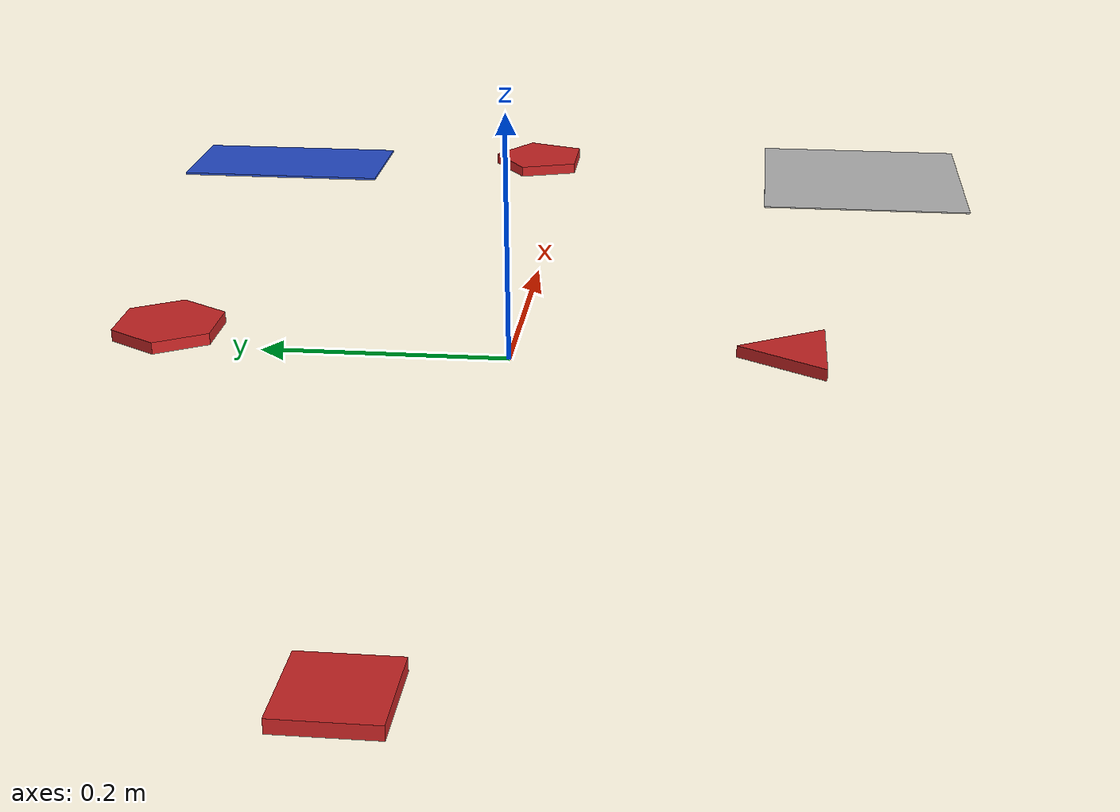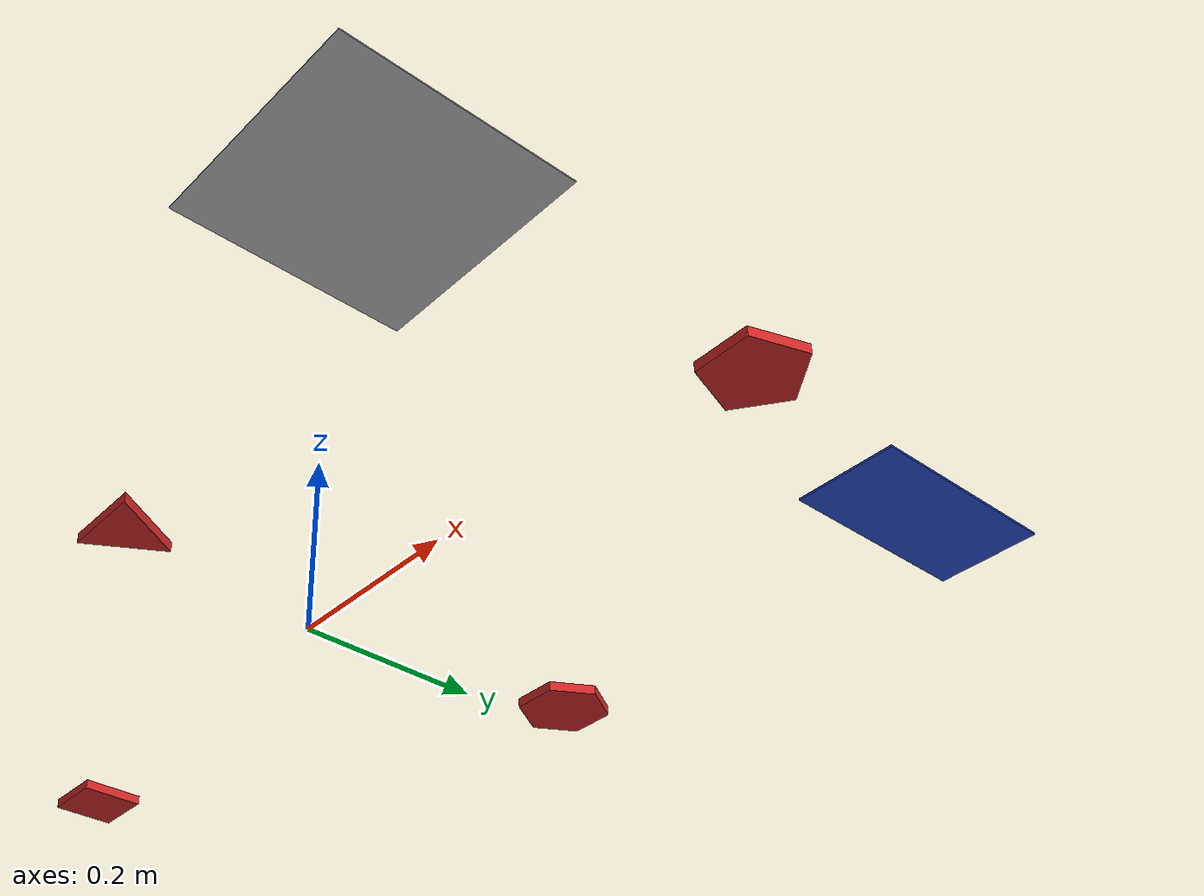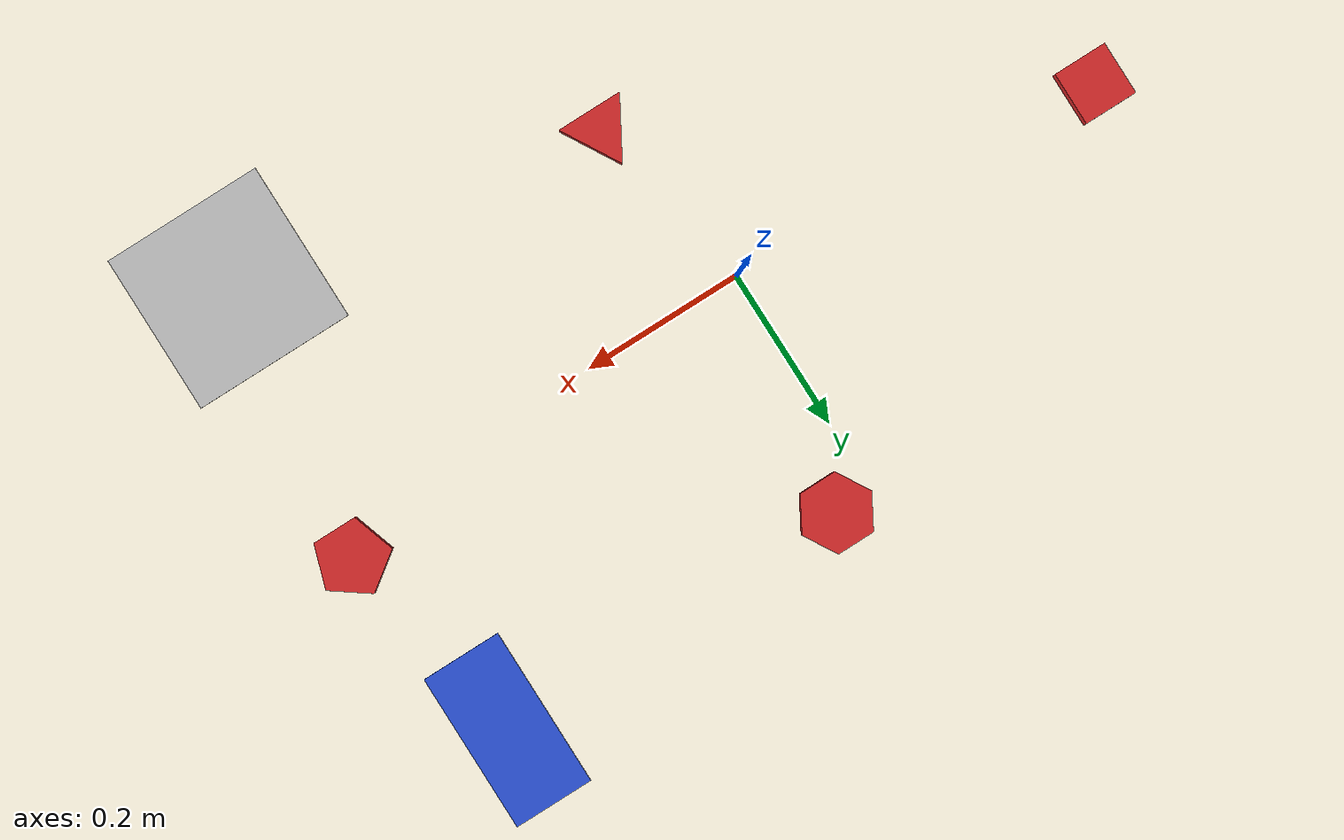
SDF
<?xml version='1.0' encoding='UTF-8'?>
<sdf version="1.4">
  <model name="mindstorm_map">
    <include>
      <uri>model://gate</uri>
      <pose>0.5 0.3 0 0 0 0</pose>
      <name>gate</name>
    </include>

    <include>
      <uri>model://victim_1</uri>
      <pose>0.5 -0.3 0 0 0 0</pose>
      <name>gate</name>
    </include>

    <include>
      <uri>model://esagono_95</uri>
      <pose>0 0.25 0 0 0 0</pose>
      <name>esagono_95</name>
    </include>

    <include>
      <uri>model://pentagono_95</uri>
      <pose>0.5 0 0 0 0 0</pose>
      <name>pentagono_95</name>
    </include>

    <include>
      <uri>model://rettangolo_95</uri>
      <pose>-0.5 0 0 0 0 0</pose>
      <name>rettangolo_95</name>
    </include>

    <include>
      <uri>model://triangolo_95</uri>
      <pose>0 -0.25 0 0 0 0</pose>
      <name>triangolo_95</name>
    </include>
  </model>
</sdf>

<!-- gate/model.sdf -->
<sdf version='1.6'>
  <model name='gate'>
    <static>true</static>
    <link name='link_0'>
      <pose frame=''>0 0 0 0 -0 0</pose>
      <visual name='visual'>
        <pose frame=''>0 0 0 0 -0 0</pose>
        <geometry>
          <box>
            <size>0.1 0.2 0.002</size>
          </box>
        </geometry>
        <material>
          <lighting>1</lighting>
          <script>
            <uri>file://media/materials/scripts/gazebo.material</uri>
            <name>Gazebo/Blue</name>
          </script>
          <shader type='vertex'>
            <normal_map>__default__</normal_map>
          </shader>
        </material>
        <cast_shadows>1</cast_shadows>
        <transparency>0</transparency>
      </visual>
    </link>
  </model>
</sdf>

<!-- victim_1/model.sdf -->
<sdf version='1.6'>
  <model name='victim_1'>
    <static>true</static>
    <link name='link_0'>
      <pose frame=''>-0 -0 -0 0 -0 0</pose>
      <visual name='visual'>
        <pose frame=''>0 0 0 0 -0 0</pose>
        <geometry>
          <box>
            <size>0.2 0.2 0.001</size>
          </box>
        </geometry>

        <material>
          <script>
            <uri>model://victim_1/materials/scripts</uri>
            <uri>model://victim_1/materials/textures</uri>
            <name>TexturedShape/Victim</name>
          </script>
        </material>

        <cast_shadows>0</cast_shadows>
        <transparency>0</transparency>
      </visual>
    </link>
    <static>0</static>
    <allow_auto_disable>1</allow_auto_disable>
  </model>
</sdf>

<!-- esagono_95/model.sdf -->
<sdf version="1.5">
  <model name="esagono_95">
    <static>true</static>
    <link name="link">
      <visual name="visual_top">
        <pose> 0 0 -0.008 0 0 0 </pose>
        <geometry>
          <mesh>
            <scale> 0.001 0.001 0.0000625</scale>
            <uri>model://esagono_95/meshes/esagono_95.STL</uri>
          </mesh>
        </geometry>
        <material>
          <lighting>1</lighting>
          <script>
            <uri>file://media/materials/scripts/gazebo.material</uri>
            <name>Gazebo/Red</name>
          </script>

          <shader type='vertex'>
            <normal_map>__default__</normal_map>
          </shader>
        </material>
      </visual>
    </link>
  </model>
</sdf>

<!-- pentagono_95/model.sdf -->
<sdf version="1.5">
  <model name="pentagono_95">
    <static>true</static>
    <link name="link">
      <visual name="visual_top">
        <pose> 0 0 -0.008 0 0 0 </pose>
        <geometry>
          <mesh>
            <scale> 0.001 0.001 0.0000625</scale>
            <uri>model://pentagono_95/meshes/pentagono_95.STL</uri>
          </mesh>
        </geometry>
        <material>
          <lighting>1</lighting>
          <script>
            <uri>file://media/materials/scripts/gazebo.material</uri>
            <name>Gazebo/Red</name>
          </script>

          <shader type='vertex'>
            <normal_map>__default__</normal_map>
          </shader>
        </material>
      </visual>
    </link>
  </model>
</sdf>

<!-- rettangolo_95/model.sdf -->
<sdf version="1.5">
  <model name="rettangolo_95">
    <static>true</static>
    <link name="link">
      <visual name="visual_top">
        <pose> 0 0 -0.008 0 0 0 </pose>
        <geometry>
          <mesh>
            <scale> 0.001 0.001 0.0000625</scale>
            <uri>model://rettangolo_95/meshes/rettangolo_95.STL</uri>
          </mesh>
        </geometry>
        <material>
          <lighting>1</lighting>
          <script>
            <uri>file://media/materials/scripts/gazebo.material</uri>
            <name>Gazebo/Red</name>
          </script>

          <shader type='vertex'>
            <normal_map>__default__</normal_map>
          </shader>
        </material>
      </visual>
    </link>
  </model>
</sdf>

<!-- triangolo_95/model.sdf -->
<sdf version="1.5">
  <model name="triangolo_95">
    <static>true</static>
    <link name="link">
      <visual name="visual_top">
        <pose> 0 0 -0.008 0 0 0 </pose>
        <geometry>
          <mesh>
            <scale> 0.001 0.001 0.0000625</scale>
            <uri>model://triangolo_95/meshes/triangolo_95.STL</uri>
          </mesh>
        </geometry>
        <material>
          <lighting>1</lighting>
          <script>
            <uri>file://media/materials/scripts/gazebo.material</uri>
            <name>Gazebo/Red</name>
          </script>

          <shader type='vertex'>
            <normal_map>__default__</normal_map>
          </shader>
        </material>
      </visual>
    </link>
  </model>
</sdf>
